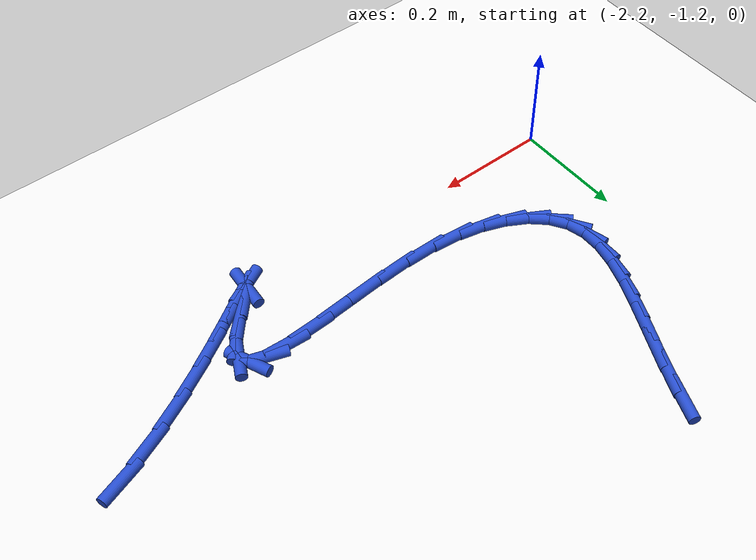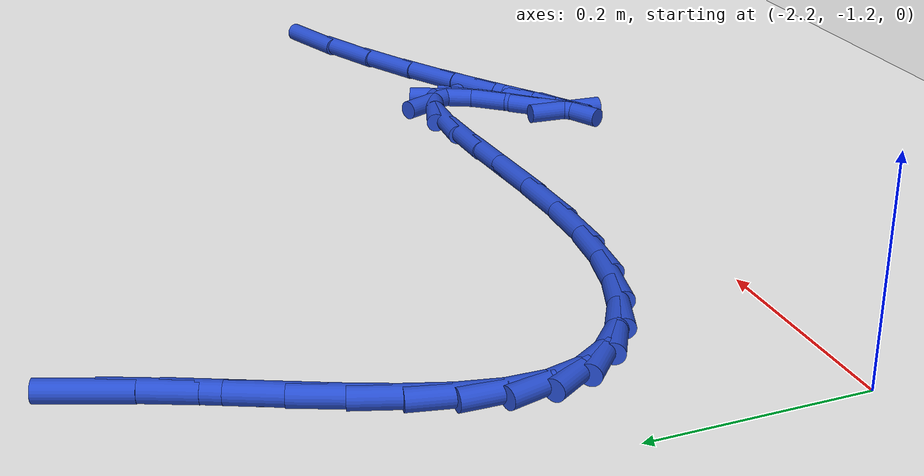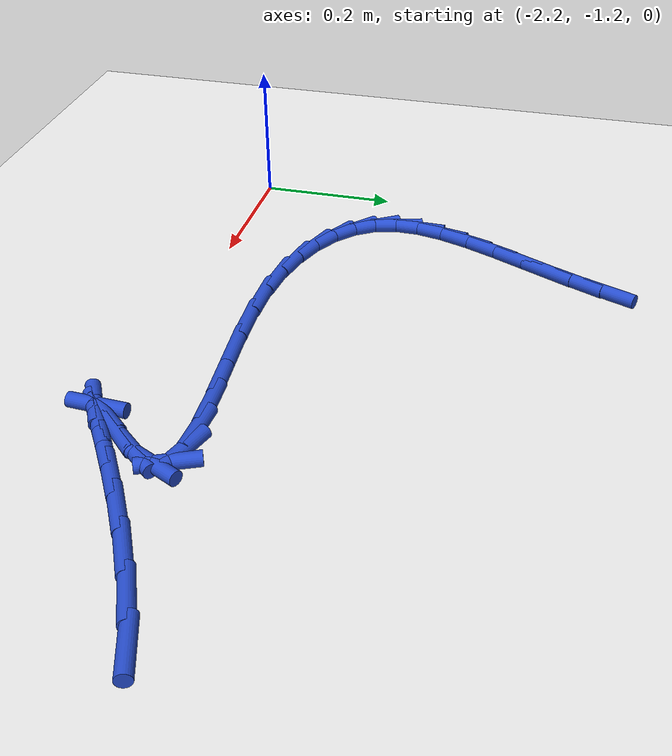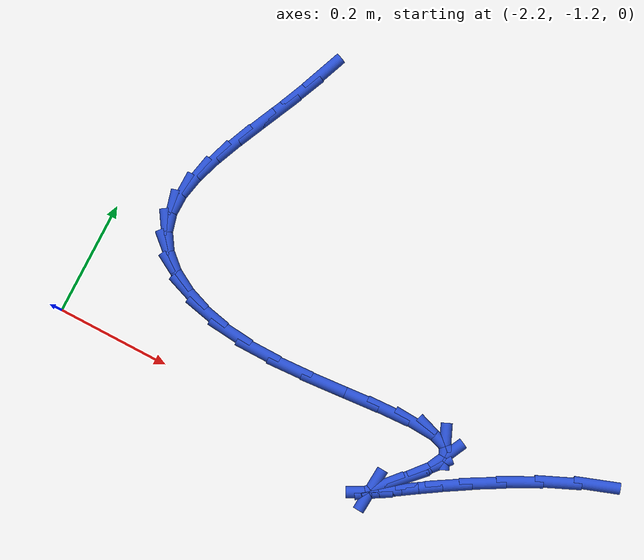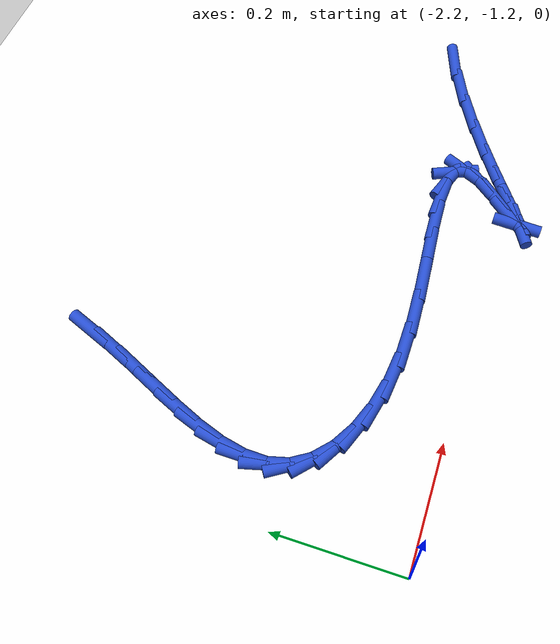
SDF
<sdf version="1.6">
 <world name="default">
  <model name="ground_plane">
   <static>1</static>
   <link name="link">
    <collision name="collision">
     <geometry><plane><normal>0 0 1</normal><size>100 100</size></plane></geometry>
     <surface><friction><ode><mu>100</mu><mu2>50</mu2></ode></friction></surface>
    </collision>
    <visual name="visual">
     <cast_shadows>0</cast_shadows>
     <geometry><plane><normal>0 0 1</normal><size>100 100</size></plane></geometry>
     <material>
      <script><uri>file://media/materials/scripts/gazebo.material</uri><name>Gazebo/WhiteGlow</name></script>
     </material>
    </visual>
   </link>
  </model>
  <model name="line">
   <link name="link_131">
    <pose>-1.993649434541966 -0.6344880949895648 0.01 0 1.57 1.1948209996041117</pose>
    <collision name="collision">
     <geometry><cylinder><radius>0.01</radius><length>0.08</length></cylinder></geometry>
    </collision>
    <visual name="visual">
     <material>
      <script><name>Gazebo/Blue</name><uri>file://media/materials/scripts/gazebo.material</uri></script>
     </material>
     <geometry><cylinder><radius>0.01</radius><length>0.08</length></cylinder></geometry>
    </visual>
   </link>
   <link name="link_132">
    <pose>-2.0113582863768933 -0.6793486316228388 0.01 0 1.57 1.156924387878727</pose>
    <collision name="collision">
     <geometry><cylinder><radius>0.01</radius><length>0.08</length></cylinder></geometry>
    </collision>
    <visual name="visual">
     <material>
      <script><name>Gazebo/Blue</name><uri>file://media/materials/scripts/gazebo.material</uri></script>
     </material>
     <geometry><cylinder><radius>0.01</radius><length>0.08</length></cylinder></geometry>
    </visual>
   </link>
   <link name="link_133">
    <pose>-2.0309629484882588 -0.7239815364565904 0.01 0 1.57 1.1338753624314188</pose>
    <collision name="collision">
     <geometry><cylinder><radius>0.01</radius><length>0.08</length></cylinder></geometry>
    </collision>
    <visual name="visual">
     <material>
      <script><name>Gazebo/Blue</name><uri>file://media/materials/scripts/gazebo.material</uri></script>
     </material>
     <geometry><cylinder><radius>0.01</radius><length>0.08</length></cylinder></geometry>
    </visual>
   </link>
   <link name="link_134">
    <pose>-2.0515795716424297 -0.7681261647583306 0.01 0 1.57 1.137933912564421</pose>
    <collision name="collision">
     <geometry><cylinder><radius>0.01</radius><length>0.08</length></cylinder></geometry>
    </collision>
    <visual name="visual">
     <material>
      <script><name>Gazebo/Blue</name><uri>file://media/materials/scripts/gazebo.material</uri></script>
     </material>
     <geometry><cylinder><radius>0.01</radius><length>0.08</length></cylinder></geometry>
    </visual>
   </link>
   <link name="link_135">
    <pose>-2.071555847535897 -0.8113564298787408 0.01 0 1.57 1.1718410235293408</pose>
    <collision name="collision">
     <geometry><cylinder><radius>0.01</radius><length>0.08</length></cylinder></geometry>
    </collision>
    <visual name="visual">
     <material>
      <script><name>Gazebo/Blue</name><uri>file://media/materials/scripts/gazebo.material</uri></script>
     </material>
     <geometry><cylinder><radius>0.01</radius><length>0.08</length></cylinder></geometry>
    </visual>
   </link>
   <link name="link_136">
    <pose>-2.089212574516523 -0.8532404552867461 0.01 0 1.57 1.2425669265189427</pose>
    <collision name="collision">
     <geometry><cylinder><radius>0.01</radius><length>0.08</length></cylinder></geometry>
    </collision>
    <visual name="visual">
     <material>
      <script><name>Gazebo/Blue</name><uri>file://media/materials/scripts/gazebo.material</uri></script>
     </material>
     <geometry><cylinder><radius>0.01</radius><length>0.08</length></cylinder></geometry>
    </visual>
   </link>
   <link name="link_137">
    <pose>-2.102870550932169 -0.8933463644512736 0.01 0 1.57 1.363251168145238</pose>
    <collision name="collision">
     <geometry><cylinder><radius>0.01</radius><length>0.08</length></cylinder></geometry>
    </collision>
    <visual name="visual">
     <material>
      <script><name>Gazebo/Blue</name><uri>file://media/materials/scripts/gazebo.material</uri></script>
     </material>
     <geometry><cylinder><radius>0.01</radius><length>0.08</length></cylinder></geometry>
    </visual>
   </link>
   <link name="link_138">
    <pose>-2.1108505751306956 -0.9312422808412502 0.01 0 1.57 1.5531301130926938</pose>
    <collision name="collision">
     <geometry><cylinder><radius>0.01</radius><length>0.08</length></cylinder></geometry>
    </collision>
    <visual name="visual">
     <material>
      <script><name>Gazebo/Blue</name><uri>file://media/materials/scripts/gazebo.material</uri></script>
     </material>
     <geometry><cylinder><radius>0.01</radius><length>0.08</length></cylinder></geometry>
    </visual>
   </link>
   <link name="link_139">
    <pose>-2.111473445459964 -0.9664963279256034 0.01 0 1.57 -1.315350921020358</pose>
    <collision name="collision">
     <geometry><cylinder><radius>0.01</radius><length>0.08</length></cylinder></geometry>
    </collision>
    <visual name="visual">
     <material>
      <script><name>Gazebo/Blue</name><uri>file://media/materials/scripts/gazebo.material</uri></script>
     </material>
     <geometry><cylinder><radius>0.01</radius><length>0.08</length></cylinder></geometry>
    </visual>
   </link>
   <link name="link_140">
    <pose>-2.1030694764419184 -0.9986768868865724 0.01 0 1.57 -1.0040417406025928</pose>
    <collision name="collision">
     <geometry><cylinder><radius>0.01</radius><length>0.08</length></cylinder></geometry>
    </collision>
    <visual name="visual">
     <material>
      <script><name>Gazebo/Blue</name><uri>file://media/materials/scripts/gazebo.material</uri></script>
     </material>
     <geometry><cylinder><radius>0.01</radius><length>0.08</length></cylinder></geometry>
    </visual>
   </link>
   <link name="link_141">
    <pose>-2.084806013465072 -1.02737500704985 0.01 0 1.57 -0.7351825169894692</pose>
    <collision name="collision">
     <geometry><cylinder><radius>0.01</radius><length>0.08</length></cylinder></geometry>
    </collision>
    <visual name="visual">
     <material>
      <script><name>Gazebo/Blue</name><uri>file://media/materials/scripts/gazebo.material</uri></script>
     </material>
     <geometry><cylinder><radius>0.01</radius><length>0.08</length></cylinder></geometry>
    </visual>
   </link>
   <link name="link_142">
    <pose>-2.0573295688637123 -1.0522217959634121 0.01 0 1.57 -0.5216854212874916</pose>
    <collision name="collision">
     <geometry><cylinder><radius>0.01</radius><length>0.08</length></cylinder></geometry>
    </collision>
    <visual name="visual">
     <material>
      <script><name>Gazebo/Blue</name><uri>file://media/materials/scripts/gazebo.material</uri></script>
     </material>
     <geometry><cylinder><radius>0.01</radius><length>0.08</length></cylinder></geometry>
    </visual>
   </link>
   <link name="link_143">
    <pose>-2.0214377999747533 -1.0728524544252447 0.01 0 1.57 -0.3533937801694479</pose>
    <collision name="collision">
     <geometry><cylinder><radius>0.01</radius><length>0.08</length></cylinder></geometry>
    </collision>
    <visual name="visual">
     <material>
      <script><name>Gazebo/Blue</name><uri>file://media/materials/scripts/gazebo.material</uri></script>
     </material>
     <geometry><cylinder><radius>0.01</radius><length>0.08</length></cylinder></geometry>
    </visual>
   </link>
   <link name="link_144">
    <pose>-1.9779283641351082 -1.088902183233331 0.01 0 1.57 -0.21714762466136042</pose>
    <collision name="collision">
     <geometry><cylinder><radius>0.01</radius><length>0.08</length></cylinder></geometry>
    </collision>
    <visual name="visual">
     <material>
      <script><name>Gazebo/Blue</name><uri>file://media/materials/scripts/gazebo.material</uri></script>
     </material>
     <geometry><cylinder><radius>0.01</radius><length>0.08</length></cylinder></geometry>
    </visual>
   </link>
   <link name="link_145">
    <pose>-1.9275989186816902 -1.1000061831856565 0.01 0 1.57 -0.10244908264305336</pose>
    <collision name="collision">
     <geometry><cylinder><radius>0.01</radius><length>0.08</length></cylinder></geometry>
    </collision>
    <visual name="visual">
     <material>
      <script><name>Gazebo/Blue</name><uri>file://media/materials/scripts/gazebo.material</uri></script>
     </material>
     <geometry><cylinder><radius>0.01</radius><length>0.08</length></cylinder></geometry>
    </visual>
   </link>
   <link name="link_146">
    <pose>-1.8712471222161473 -1.105799656308864 0.01 0 1.57 -0.008637439138269231</pose>
    <collision name="collision">
     <geometry><cylinder><radius>0.01</radius><length>0.08</length></cylinder></geometry>
    </collision>
    <visual name="visual">
     <material>
      <script><name>Gazebo/Blue</name><uri>file://media/materials/scripts/gazebo.material</uri></script>
     </material>
     <geometry><cylinder><radius>0.01</radius><length>0.08</length></cylinder></geometry>
    </visual>
   </link>
   <link name="link_147">
    <pose>-1.8100927565352507 -1.1063278865568058 0.01 0 1.57 0.049417126795705014</pose>
    <collision name="collision">
     <geometry><cylinder><radius>0.01</radius><length>0.08</length></cylinder></geometry>
    </collision>
    <visual name="visual">
     <material>
      <script><name>Gazebo/Blue</name><uri>file://media/materials/scripts/gazebo.material</uri></script>
     </material>
     <geometry><cylinder><radius>0.01</radius><length>0.08</length></cylinder></geometry>
    </visual>
   </link>
   <link name="link_148">
    <pose>-1.7469716231833134 -1.1032060798874732 0.01 0 1.57 0.0771274763438581</pose>
    <collision name="collision">
     <geometry><cylinder><radius>0.01</radius><length>0.08</length></cylinder></geometry>
    </collision>
    <visual name="visual">
     <material>
      <script><name>Gazebo/Blue</name><uri>file://media/materials/scripts/gazebo.material</uri></script>
     </material>
     <geometry><cylinder><radius>0.01</radius><length>0.08</length></cylinder></geometry>
    </visual>
   </link>
   <link name="link_149">
    <pose>-1.6851061816140085 -1.0984250705646972 0.01 0 1.57 0.07737766005414644</pose>
    <collision name="collision">
     <geometry><cylinder><radius>0.01</radius><length>0.08</length></cylinder></geometry>
    </collision>
    <visual name="visual">
     <material>
      <script><name>Gazebo/Blue</name><uri>file://media/materials/scripts/gazebo.material</uri></script>
     </material>
     <geometry><cylinder><radius>0.01</radius><length>0.08</length></cylinder></geometry>
    </visual>
   </link>
   <link name="link_150">
    <pose>-1.627718891281003 -1.0939756928523061 0.01 0 1.57 0.04278036217924747</pose>
    <collision name="collision">
     <geometry><cylinder><radius>0.01</radius><length>0.08</length></cylinder></geometry>
    </collision>
    <visual name="visual">
     <material>
      <script><name>Gazebo/Blue</name><uri>file://media/materials/scripts/gazebo.material</uri></script>
     </material>
     <geometry><cylinder><radius>0.01</radius><length>0.08</length></cylinder></geometry>
    </visual>
   </link>
   <link name="link_151">
    <pose>-1.578032211637966 -1.09184878101413 0.01 0 1.57 -0.056343416321159426</pose>
    <collision name="collision">
     <geometry><cylinder><radius>0.01</radius><length>0.08</length></cylinder></geometry>
    </collision>
    <visual name="visual">
     <material>
      <script><name>Gazebo/Blue</name><uri>file://media/materials/scripts/gazebo.material</uri></script>
     </material>
     <geometry><cylinder><radius>0.01</radius><length>0.08</length></cylinder></geometry>
    </visual>
   </link>
   <link name="link_152">
    <pose>-1.5392686021385655 -1.0940351693139987 0.01 0 1.57 -0.3321149979497251</pose>
    <collision name="collision">
     <geometry><cylinder><radius>0.01</radius><length>0.08</length></cylinder></geometry>
    </collision>
    <visual name="visual">
     <material>
      <script><name>Gazebo/Blue</name><uri>file://media/materials/scripts/gazebo.material</uri></script>
     </material>
     <geometry><cylinder><radius>0.01</radius><length>0.08</length></cylinder></geometry>
    </visual>
   </link>
   <link name="link_153">
    <pose>-1.5146505222364735 -1.1025256920157418 0.01 0 1.57 -1.1630739161060617</pose>
    <collision name="collision">
     <geometry><cylinder><radius>0.01</radius><length>0.08</length></cylinder></geometry>
    </collision>
    <visual name="visual">
     <material>
      <script><name>Gazebo/Blue</name><uri>file://media/materials/scripts/gazebo.material</uri></script>
     </material>
     <geometry><cylinder><radius>0.01</radius><length>0.08</length></cylinder></geometry>
    </visual>
   </link>
   <link name="link_154">
    <pose>-1.5074004313853582 -1.1193111833831888 0.01 0 1.57 1.1164790883211806</pose>
    <collision name="collision">
     <geometry><cylinder><radius>0.01</radius><length>0.08</length></cylinder></geometry>
    </collision>
    <visual name="visual">
     <material>
      <script><name>Gazebo/Blue</name><uri>file://media/materials/scripts/gazebo.material</uri></script>
     </material>
     <geometry><cylinder><radius>0.01</radius><length>0.08</length></cylinder></geometry>
    </visual>
   </link>
   <link name="link_155">
    <pose>-1.520563970237509 -1.146264060604862 0.01 0 1.57 0.8651659984094345</pose>
    <collision name="collision">
     <geometry><cylinder><radius>0.01</radius><length>0.08</length></cylinder></geometry>
    </collision>
    <visual name="visual">
     <material>
      <script><name>Gazebo/Blue</name><uri>file://media/materials/scripts/gazebo.material</uri></script>
     </material>
     <geometry><cylinder><radius>0.01</radius><length>0.08</length></cylinder></geometry>
    </visual>
   </link>
   <link name="link_156">
    <pose>-1.54926326360943 -1.179950294020241 0.01 0 1.57 0.8068076676636775</pose>
    <collision name="collision">
     <geometry><cylinder><radius>0.01</radius><length>0.08</length></cylinder></geometry>
    </collision>
    <visual name="visual">
     <material>
      <script><name>Gazebo/Blue</name><uri>file://media/materials/scripts/gazebo.material</uri></script>
     </material>
     <geometry><cylinder><radius>0.01</radius><length>0.08</length></cylinder></geometry>
    </visual>
   </link>
   <link name="link_157">
    <pose>-1.5776755573111625 -1.2096059844592635 0.01 0 1.57 0.8456098175336241</pose>
    <collision name="collision">
     <geometry><cylinder><radius>0.01</radius><length>0.08</length></cylinder></geometry>
    </collision>
    <visual name="visual">
     <material>
      <script><name>Gazebo/Blue</name><uri>file://media/materials/scripts/gazebo.material</uri></script>
     </material>
     <geometry><cylinder><radius>0.01</radius><length>0.08</length></cylinder></geometry>
    </visual>
   </link>
   <link name="link_158">
    <pose>-1.5925696487780243 -1.226411044181295 0.01 0 1.57 1.507832066172458</pose>
    <collision name="collision">
     <geometry><cylinder><radius>0.01</radius><length>0.08</length></cylinder></geometry>
    </collision>
    <visual name="visual">
     <material>
      <script><name>Gazebo/Blue</name><uri>file://media/materials/scripts/gazebo.material</uri></script>
     </material>
     <geometry><cylinder><radius>0.01</radius><length>0.08</length></cylinder></geometry>
    </visual>
   </link>
   <link name="link_159">
    <pose>-1.5928209124867838 -1.2303963459009217 0.01 0 1.57 0.4896202093600665</pose>
    <collision name="collision">
     <geometry><cylinder><radius>0.01</radius><length>0.08</length></cylinder></geometry>
    </collision>
    <visual name="visual">
     <material>
      <script><name>Gazebo/Blue</name><uri>file://media/materials/scripts/gazebo.material</uri></script>
     </material>
     <geometry><cylinder><radius>0.01</radius><length>0.08</length></cylinder></geometry>
    </visual>
   </link>
   <link name="link_160">
    <pose>-1.5800041992585356 -1.2235663142534448 0.01 0 1.57 0.5717212021759066</pose>
    <collision name="collision">
     <geometry><cylinder><radius>0.01</radius><length>0.08</length></cylinder></geometry>
    </collision>
    <visual name="visual">
     <material>
      <script><name>Gazebo/Blue</name><uri>file://media/materials/scripts/gazebo.material</uri></script>
     </material>
     <geometry><cylinder><radius>0.01</radius><length>0.08</length></cylinder></geometry>
    </visual>
   </link>
   <link name="link_161">
    <pose>-1.5556943599143755 -1.2079253738741653 0.01 0 1.57 0.5804545564703348</pose>
    <collision name="collision">
     <geometry><cylinder><radius>0.01</radius><length>0.08</length></cylinder></geometry>
    </collision>
    <visual name="visual">
     <material>
      <script><name>Gazebo/Blue</name><uri>file://media/materials/scripts/gazebo.material</uri></script>
     </material>
     <geometry><cylinder><radius>0.01</radius><length>0.08</length></cylinder></geometry>
    </visual>
   </link>
   <link name="link_162">
    <pose>-1.5214662452753969 -1.1854779493983838 0.01 0 1.57 0.5693748280001718</pose>
    <collision name="collision">
     <geometry><cylinder><radius>0.01</radius><length>0.08</length></cylinder></geometry>
    </collision>
    <visual name="visual">
     <material>
      <script><name>Gazebo/Blue</name><uri>file://media/materials/scripts/gazebo.material</uri></script>
     </material>
     <geometry><cylinder><radius>0.01</radius><length>0.08</length></cylinder></geometry>
    </visual>
   </link>
   <link name="link_163">
    <pose>-1.4788947061626947 -1.1582284654614015 0.01 0 1.57 0.5469959488943374</pose>
    <collision name="collision">
     <geometry><cylinder><radius>0.01</radius><length>0.08</length></cylinder></geometry>
    </collision>
    <visual name="visual">
     <material>
      <script><name>Gazebo/Blue</name><uri>file://media/materials/scripts/gazebo.material</uri></script>
     </material>
     <geometry><cylinder><radius>0.01</radius><length>0.08</length></cylinder></geometry>
    </visual>
   </link>
   <link name="link_164">
    <pose>-1.429554593397364 -1.1281813466985193 0.01 0 1.57 0.5146855461301348</pose>
    <collision name="collision">
     <geometry><cylinder><radius>0.01</radius><length>0.08</length></cylinder></geometry>
    </collision>
    <visual name="visual">
     <material>
      <script><name>Gazebo/Blue</name><uri>file://media/materials/scripts/gazebo.material</uri></script>
     </material>
     <geometry><cylinder><radius>0.01</radius><length>0.08</length></cylinder></geometry>
    </visual>
   </link>
   <link name="link_165">
    <pose>-1.3750207578004983 -1.0973410177450376 0.01 0 1.57 0.4712229255851119</pose>
    <collision name="collision">
     <geometry><cylinder><radius>0.01</radius><length>0.08</length></cylinder></geometry>
    </collision>
    <visual name="visual">
     <material>
      <script><name>Gazebo/Blue</name><uri>file://media/materials/scripts/gazebo.material</uri></script>
     </material>
     <geometry><cylinder><radius>0.01</radius><length>0.08</length></cylinder></geometry>
    </visual>
   </link>
   <link name="link_166">
    <pose>-1.316868050193194 -1.067711903236258 0.01 0 1.57 0.4134892390765409</pose>
    <collision name="collision">
     <geometry><cylinder><radius>0.01</radius><length>0.08</length></cylinder></geometry>
    </collision>
    <visual name="visual">
     <material>
      <script><name>Gazebo/Blue</name><uri>file://media/materials/scripts/gazebo.material</uri></script>
     </material>
     <geometry><cylinder><radius>0.01</radius><length>0.08</length></cylinder></geometry>
    </visual>
   </link>
   <link name="link_167">
    <pose>-1.256671321396545 -1.0412984278074815 0.01 0 1.57 0.3360924031560807</pose>
    <collision name="collision">
     <geometry><cylinder><radius>0.01</radius><length>0.08</length></cylinder></geometry>
    </collision>
    <visual name="visual">
     <material>
      <script><name>Gazebo/Blue</name><uri>file://media/materials/scripts/gazebo.material</uri></script>
     </material>
     <geometry><cylinder><radius>0.01</radius><length>0.08</length></cylinder></geometry>
    </visual>
   </link>
  </model>
 </world>
</sdf>
